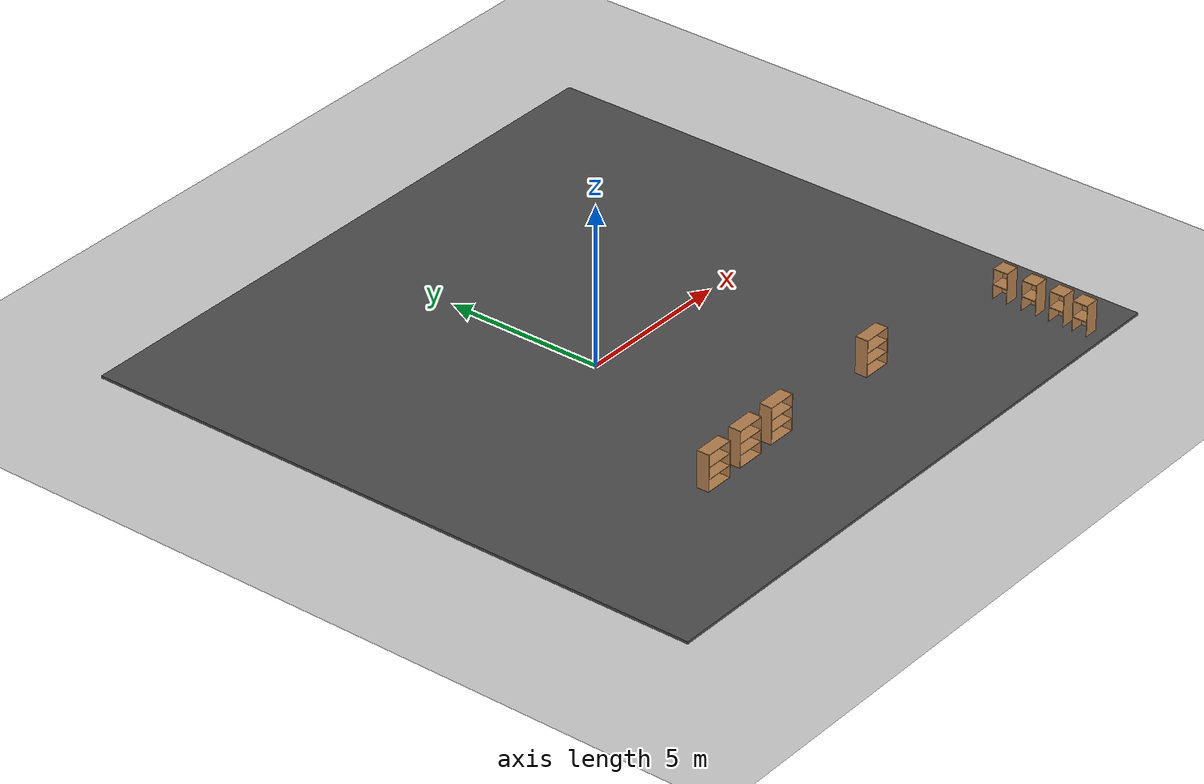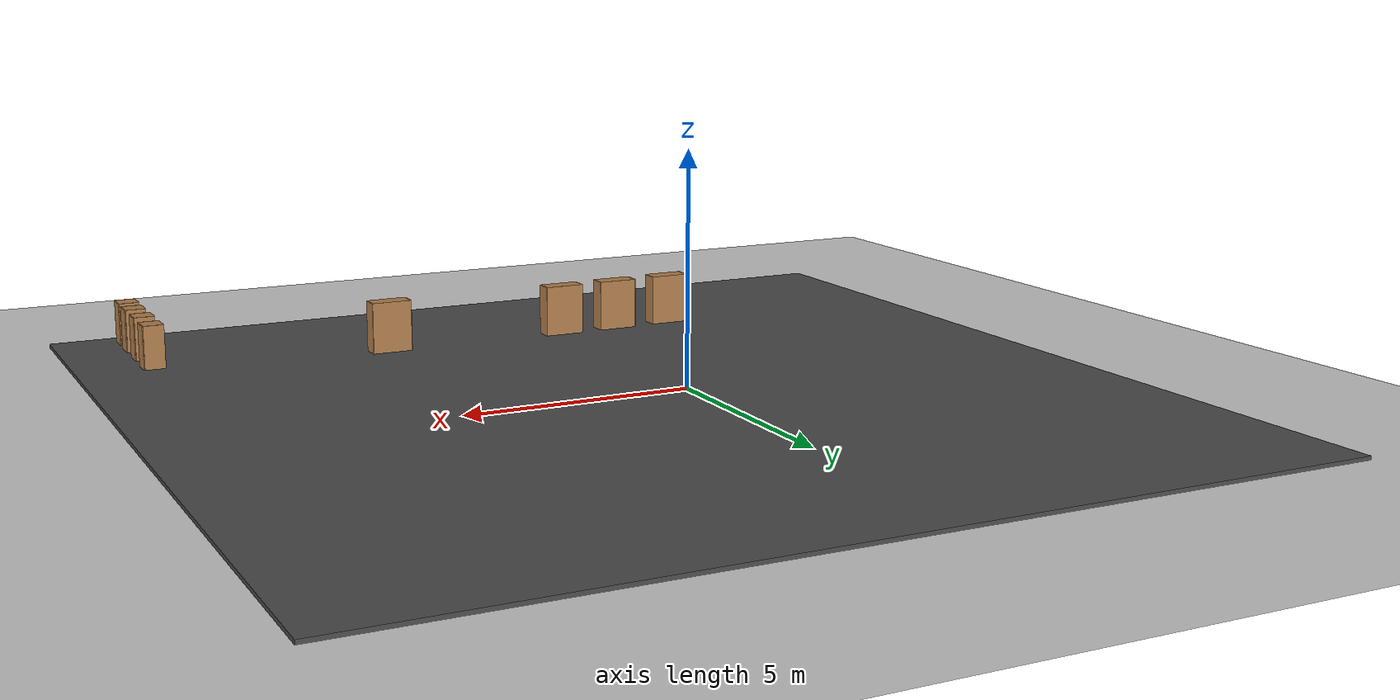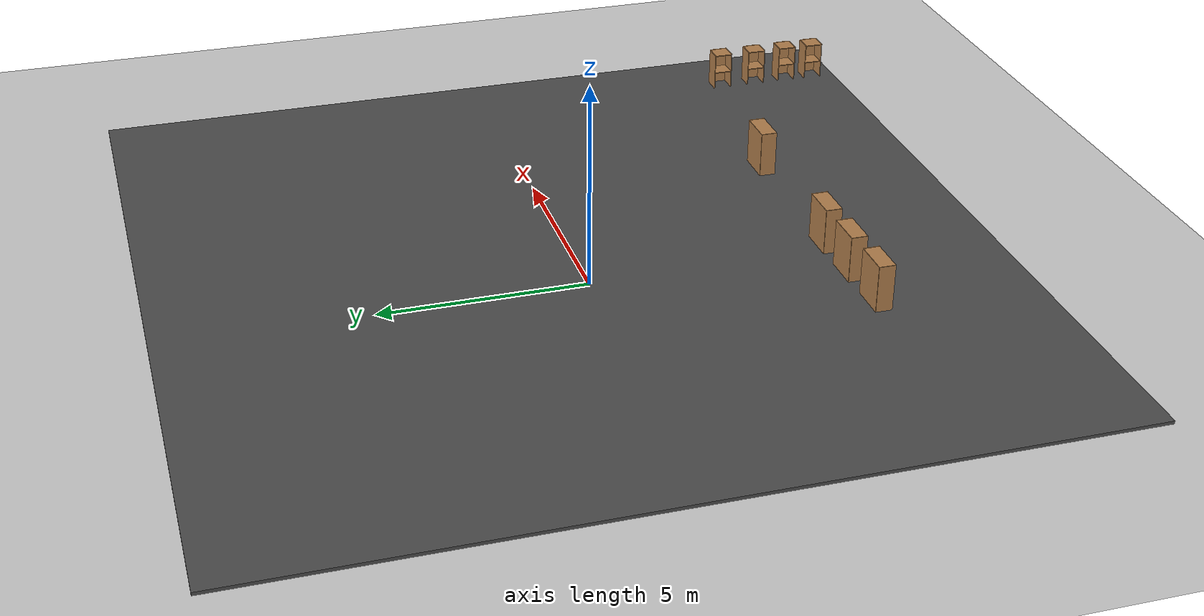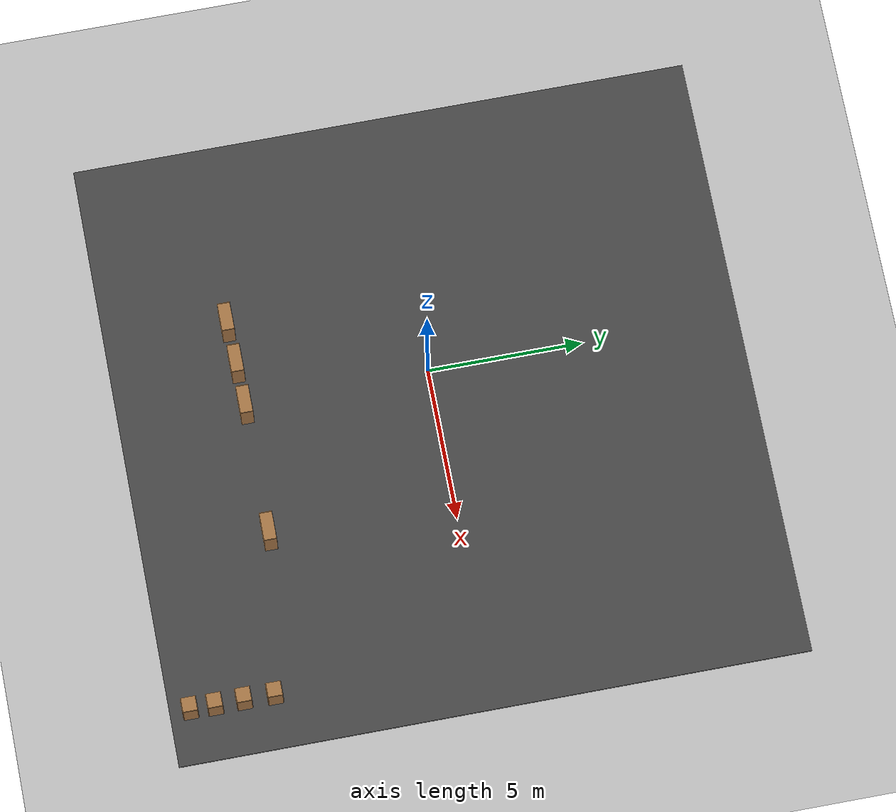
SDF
<sdf version="1.7">
 <world name="default">
  <model name="ground_plane">
   <static>1</static>
   <link name="link">
    <collision name="collision">
     <geometry><plane><normal>0 0 1</normal><size>100 100</size></plane></geometry>
     <surface><friction><ode><mu>100</mu><mu2>50</mu2></ode></friction></surface>
    </collision>
    <visual name="visual">
     <cast_shadows>0</cast_shadows>
     <geometry><plane><normal>0 0 1</normal><size>100 100</size></plane></geometry>
     <material>
      <script><uri>file://media/materials/scripts/gazebo.material</uri><name>Gazebo/Grey</name></script>
     </material>
    </visual>
   </link>
  </model>
  <model name="asphalt_plane">
   <link name="link">
    <visual name="visual">
     <cast_shadows>0</cast_shadows>
     <geometry><box><size>20 20 0.1</size></box></geometry>
     <material>
      <script>
       <uri>model://asphalt_plane/materials/scripts</uri>
       <uri>model://asphalt_plane/materials/textures</uri>
       <name>vrc/asphalt</name>
      </script>
      <shader type="pixel"/>
     </material>
    </visual>
    <collision name="collision">
     <geometry><box><size>20 20 0.1</size></box></geometry>
     <surface>
      <friction>
       <ode><mu>1</mu><mu2>1</mu2><fdir1>0 0 0</fdir1><slip1>0</slip1><slip2>0</slip2></ode>
       <torsional>
        <coefficient>1</coefficient>
        <patch_radius>0</patch_radius>
        <surface_radius>0</surface_radius>
        <use_patch_radius>1</use_patch_radius>
        <ode><slip>0</slip></ode>
       </torsional>
      </friction>
      <bounce><restitution_coefficient>0</restitution_coefficient><threshold>1e+06</threshold></bounce>
      <contact>
       <collide_without_contact>0</collide_without_contact>
       <collide_without_contact_bitmask>1</collide_without_contact_bitmask>
       <collide_bitmask>1</collide_bitmask>
       <ode>
        <soft_cfm>0</soft_cfm>
        <soft_erp>0.2</soft_erp>
        <kp>1e+13</kp>
        <kd>1</kd>
        <max_vel>0.01</max_vel>
        <min_depth>0</min_depth>
       </ode>
       <bullet>
        <split_impulse>1</split_impulse>
        <split_impulse_penetration_threshold>-0.01</split_impulse_penetration_threshold>
        <soft_cfm>0</soft_cfm>
        <soft_erp>0.2</soft_erp>
        <kp>1e+13</kp>
        <kd>1</kd>
       </bullet>
      </contact>
     </surface>
    </collision>
   </link>
   <static>1</static>
   <pose>1.27844 0.044412 0 0 -0 0</pose>
  </model>
  <model name="bookshelf">
   <static>1</static>
   <link name="link">
    <inertial><mass>1</mass></inertial>
    <collision name="back">
     <pose>0 0.005 0.6 0 -0 0</pose>
     <geometry><box><size>0.9 0.01 1.2</size></box></geometry>
    </collision>
    <visual name="visual1">
     <pose>0 0.005 0.6 0 -0 0</pose>
     <geometry><box><size>0.9 0.01 1.2</size></box></geometry>
     <material>
      <script><uri>file://media/materials/scripts/gazebo.material</uri><name>Gazebo/Wood</name></script>
     </material>
    </visual>
    <collision name="left_side">
     <pose>0.45 -0.195 0.6 0 -0 0</pose>
     <geometry><box><size>0.02 0.4 1.2</size></box></geometry>
    </collision>
    <visual name="visual2">
     <pose>0.45 -0.195 0.6 0 -0 0</pose>
     <geometry><box><size>0.02 0.4 1.2</size></box></geometry>
     <material>
      <script><uri>file://media/materials/scripts/gazebo.material</uri><name>Gazebo/Wood</name></script>
     </material>
    </visual>
    <collision name="right_side">
     <pose>-0.45 -0.195 0.6 0 -0 0</pose>
     <geometry><box><size>0.02 0.4 1.2</size></box></geometry>
    </collision>
    <visual name="visual3">
     <pose>-0.45 -0.195 0.6 0 -0 0</pose>
     <geometry><box><size>0.02 0.4 1.2</size></box></geometry>
     <material>
      <script><uri>file://media/materials/scripts/gazebo.material</uri><name>Gazebo/Wood</name></script>
     </material>
    </visual>
    <collision name="bottom">
     <pose>0 -0.195 0.03 0 -0 0</pose>
     <geometry><box><size>0.88 0.4 0.06</size></box></geometry>
    </collision>
    <visual name="visual4">
     <pose>0 -0.195 0.03 0 -0 0</pose>
     <geometry><box><size>0.88 0.4 0.06</size></box></geometry>
     <material>
      <script><uri>file://media/materials/scripts/gazebo.material</uri><name>Gazebo/Wood</name></script>
     </material>
    </visual>
    <collision name="top">
     <pose>0 -0.195 1.19 0 -0 0</pose>
     <geometry><box><size>0.88 0.4 0.02</size></box></geometry>
    </collision>
    <visual name="visual5">
     <pose>0 -0.195 1.19 0 -0 0</pose>
     <geometry><box><size>0.88 0.4 0.02</size></box></geometry>
     <material>
      <script><uri>file://media/materials/scripts/gazebo.material</uri><name>Gazebo/Wood</name></script>
     </material>
    </visual>
    <collision name="low_shelf">
     <pose>0 -0.195 0.43 0 -0 0</pose>
     <geometry><box><size>0.88 0.4 0.02</size></box></geometry>
    </collision>
    <visual name="visual6">
     <pose>0 -0.195 0.43 0 -0 0</pose>
     <geometry><box><size>0.88 0.4 0.02</size></box></geometry>
     <material>
      <script><uri>file://media/materials/scripts/gazebo.material</uri><name>Gazebo/Wood</name></script>
     </material>
    </visual>
    <collision name="high_shelf">
     <pose>0 -0.195 0.8 0 -0 0</pose>
     <geometry><box><size>0.88 0.4 0.02</size></box></geometry>
    </collision>
    <visual name="visual7">
     <pose>0 -0.195 0.8 0 -0 0</pose>
     <geometry><box><size>0.88 0.4 0.02</size></box></geometry>
     <material>
      <script><uri>file://media/materials/scripts/gazebo.material</uri><name>Gazebo/Wood</name></script>
     </material>
    </visual>
   </link>
   <pose>-2.58547 -5.80992 0 0 -0 0</pose>
  </model>
  <model name="bookshelf_0">
   <static>1</static>
   <link name="link">
    <inertial><mass>1</mass></inertial>
    <collision name="back">
     <pose>0 0.005 0.6 0 -0 0</pose>
     <geometry><box><size>0.9 0.01 1.2</size></box></geometry>
    </collision>
    <visual name="visual1">
     <pose>0 0.005 0.6 0 -0 0</pose>
     <geometry><box><size>0.9 0.01 1.2</size></box></geometry>
     <material>
      <script><uri>file://media/materials/scripts/gazebo.material</uri><name>Gazebo/Wood</name></script>
     </material>
    </visual>
    <collision name="left_side">
     <pose>0.45 -0.195 0.6 0 -0 0</pose>
     <geometry><box><size>0.02 0.4 1.2</size></box></geometry>
    </collision>
    <visual name="visual2">
     <pose>0.45 -0.195 0.6 0 -0 0</pose>
     <geometry><box><size>0.02 0.4 1.2</size></box></geometry>
     <material>
      <script><uri>file://media/materials/scripts/gazebo.material</uri><name>Gazebo/Wood</name></script>
     </material>
    </visual>
    <collision name="right_side">
     <pose>-0.45 -0.195 0.6 0 -0 0</pose>
     <geometry><box><size>0.02 0.4 1.2</size></box></geometry>
    </collision>
    <visual name="visual3">
     <pose>-0.45 -0.195 0.6 0 -0 0</pose>
     <geometry><box><size>0.02 0.4 1.2</size></box></geometry>
     <material>
      <script><uri>file://media/materials/scripts/gazebo.material</uri><name>Gazebo/Wood</name></script>
     </material>
    </visual>
    <collision name="bottom">
     <pose>0 -0.195 0.03 0 -0 0</pose>
     <geometry><box><size>0.88 0.4 0.06</size></box></geometry>
    </collision>
    <visual name="visual4">
     <pose>0 -0.195 0.03 0 -0 0</pose>
     <geometry><box><size>0.88 0.4 0.06</size></box></geometry>
     <material>
      <script><uri>file://media/materials/scripts/gazebo.material</uri><name>Gazebo/Wood</name></script>
     </material>
    </visual>
    <collision name="top">
     <pose>0 -0.195 1.19 0 -0 0</pose>
     <geometry><box><size>0.88 0.4 0.02</size></box></geometry>
    </collision>
    <visual name="visual5">
     <pose>0 -0.195 1.19 0 -0 0</pose>
     <geometry><box><size>0.88 0.4 0.02</size></box></geometry>
     <material>
      <script><uri>file://media/materials/scripts/gazebo.material</uri><name>Gazebo/Wood</name></script>
     </material>
    </visual>
    <collision name="low_shelf">
     <pose>0 -0.195 0.43 0 -0 0</pose>
     <geometry><box><size>0.88 0.4 0.02</size></box></geometry>
    </collision>
    <visual name="visual6">
     <pose>0 -0.195 0.43 0 -0 0</pose>
     <geometry><box><size>0.88 0.4 0.02</size></box></geometry>
     <material>
      <script><uri>file://media/materials/scripts/gazebo.material</uri><name>Gazebo/Wood</name></script>
     </material>
    </visual>
    <collision name="high_shelf">
     <pose>0 -0.195 0.8 0 -0 0</pose>
     <geometry><box><size>0.88 0.4 0.02</size></box></geometry>
    </collision>
    <visual name="visual7">
     <pose>0 -0.195 0.8 0 -0 0</pose>
     <geometry><box><size>0.88 0.4 0.02</size></box></geometry>
     <material>
      <script><uri>file://media/materials/scripts/gazebo.material</uri><name>Gazebo/Wood</name></script>
     </material>
    </visual>
   </link>
   <pose>-1.17255 -5.75218 0 0 -0 0</pose>
  </model>
  <model name="bookshelf_1">
   <static>1</static>
   <link name="link">
    <inertial><mass>1</mass></inertial>
    <collision name="back">
     <pose>0 0.005 0.6 0 -0 0</pose>
     <geometry><box><size>0.9 0.01 1.2</size></box></geometry>
    </collision>
    <visual name="visual1">
     <pose>0 0.005 0.6 0 -0 0</pose>
     <geometry><box><size>0.9 0.01 1.2</size></box></geometry>
     <material>
      <script><uri>file://media/materials/scripts/gazebo.material</uri><name>Gazebo/Wood</name></script>
     </material>
    </visual>
    <collision name="left_side">
     <pose>0.45 -0.195 0.6 0 -0 0</pose>
     <geometry><box><size>0.02 0.4 1.2</size></box></geometry>
    </collision>
    <visual name="visual2">
     <pose>0.45 -0.195 0.6 0 -0 0</pose>
     <geometry><box><size>0.02 0.4 1.2</size></box></geometry>
     <material>
      <script><uri>file://media/materials/scripts/gazebo.material</uri><name>Gazebo/Wood</name></script>
     </material>
    </visual>
    <collision name="right_side">
     <pose>-0.45 -0.195 0.6 0 -0 0</pose>
     <geometry><box><size>0.02 0.4 1.2</size></box></geometry>
    </collision>
    <visual name="visual3">
     <pose>-0.45 -0.195 0.6 0 -0 0</pose>
     <geometry><box><size>0.02 0.4 1.2</size></box></geometry>
     <material>
      <script><uri>file://media/materials/scripts/gazebo.material</uri><name>Gazebo/Wood</name></script>
     </material>
    </visual>
    <collision name="bottom">
     <pose>0 -0.195 0.03 0 -0 0</pose>
     <geometry><box><size>0.88 0.4 0.06</size></box></geometry>
    </collision>
    <visual name="visual4">
     <pose>0 -0.195 0.03 0 -0 0</pose>
     <geometry><box><size>0.88 0.4 0.06</size></box></geometry>
     <material>
      <script><uri>file://media/materials/scripts/gazebo.material</uri><name>Gazebo/Wood</name></script>
     </material>
    </visual>
    <collision name="top">
     <pose>0 -0.195 1.19 0 -0 0</pose>
     <geometry><box><size>0.88 0.4 0.02</size></box></geometry>
    </collision>
    <visual name="visual5">
     <pose>0 -0.195 1.19 0 -0 0</pose>
     <geometry><box><size>0.88 0.4 0.02</size></box></geometry>
     <material>
      <script><uri>file://media/materials/scripts/gazebo.material</uri><name>Gazebo/Wood</name></script>
     </material>
    </visual>
    <collision name="low_shelf">
     <pose>0 -0.195 0.43 0 -0 0</pose>
     <geometry><box><size>0.88 0.4 0.02</size></box></geometry>
    </collision>
    <visual name="visual6">
     <pose>0 -0.195 0.43 0 -0 0</pose>
     <geometry><box><size>0.88 0.4 0.02</size></box></geometry>
     <material>
      <script><uri>file://media/materials/scripts/gazebo.material</uri><name>Gazebo/Wood</name></script>
     </material>
    </visual>
    <collision name="high_shelf">
     <pose>0 -0.195 0.8 0 -0 0</pose>
     <geometry><box><size>0.88 0.4 0.02</size></box></geometry>
    </collision>
    <visual name="visual7">
     <pose>0 -0.195 0.8 0 -0 0</pose>
     <geometry><box><size>0.88 0.4 0.02</size></box></geometry>
     <material>
      <script><uri>file://media/materials/scripts/gazebo.material</uri><name>Gazebo/Wood</name></script>
     </material>
    </visual>
   </link>
   <pose>0.226224 -5.7131 0 0 -0 0</pose>
  </model>
  <model name="bookshelf_4">
   <static>1</static>
   <link name="link">
    <inertial><mass>1</mass></inertial>
    <collision name="back">
     <pose>0 0.005 0.6 0 -0 0</pose>
     <geometry><box><size>0.9 0.01 1.2</size></box></geometry>
    </collision>
    <visual name="visual1">
     <pose>0 0.005 0.6 0 -0 0</pose>
     <geometry><box><size>0.9 0.01 1.2</size></box></geometry>
     <material>
      <script><uri>file://media/materials/scripts/gazebo.material</uri><name>Gazebo/Wood</name></script>
     </material>
    </visual>
    <collision name="left_side">
     <pose>0.45 -0.195 0.6 0 -0 0</pose>
     <geometry><box><size>0.02 0.4 1.2</size></box></geometry>
    </collision>
    <visual name="visual2">
     <pose>0.45 -0.195 0.6 0 -0 0</pose>
     <geometry><box><size>0.02 0.4 1.2</size></box></geometry>
     <material>
      <script><uri>file://media/materials/scripts/gazebo.material</uri><name>Gazebo/Wood</name></script>
     </material>
    </visual>
    <collision name="right_side">
     <pose>-0.45 -0.195 0.6 0 -0 0</pose>
     <geometry><box><size>0.02 0.4 1.2</size></box></geometry>
    </collision>
    <visual name="visual3">
     <pose>-0.45 -0.195 0.6 0 -0 0</pose>
     <geometry><box><size>0.02 0.4 1.2</size></box></geometry>
     <material>
      <script><uri>file://media/materials/scripts/gazebo.material</uri><name>Gazebo/Wood</name></script>
     </material>
    </visual>
    <collision name="bottom">
     <pose>0 -0.195 0.03 0 -0 0</pose>
     <geometry><box><size>0.88 0.4 0.06</size></box></geometry>
    </collision>
    <visual name="visual4">
     <pose>0 -0.195 0.03 0 -0 0</pose>
     <geometry><box><size>0.88 0.4 0.06</size></box></geometry>
     <material>
      <script><uri>file://media/materials/scripts/gazebo.material</uri><name>Gazebo/Wood</name></script>
     </material>
    </visual>
    <collision name="top">
     <pose>0 -0.195 1.19 0 -0 0</pose>
     <geometry><box><size>0.88 0.4 0.02</size></box></geometry>
    </collision>
    <visual name="visual5">
     <pose>0 -0.195 1.19 0 -0 0</pose>
     <geometry><box><size>0.88 0.4 0.02</size></box></geometry>
     <material>
      <script><uri>file://media/materials/scripts/gazebo.material</uri><name>Gazebo/Wood</name></script>
     </material>
    </visual>
    <collision name="low_shelf">
     <pose>0 -0.195 0.43 0 -0 0</pose>
     <geometry><box><size>0.88 0.4 0.02</size></box></geometry>
    </collision>
    <visual name="visual6">
     <pose>0 -0.195 0.43 0 -0 0</pose>
     <geometry><box><size>0.88 0.4 0.02</size></box></geometry>
     <material>
      <script><uri>file://media/materials/scripts/gazebo.material</uri><name>Gazebo/Wood</name></script>
     </material>
    </visual>
    <collision name="high_shelf">
     <pose>0 -0.195 0.8 0 -0 0</pose>
     <geometry><box><size>0.88 0.4 0.02</size></box></geometry>
    </collision>
    <visual name="visual7">
     <pose>0 -0.195 0.8 0 -0 0</pose>
     <geometry><box><size>0.88 0.4 0.02</size></box></geometry>
     <material>
      <script><uri>file://media/materials/scripts/gazebo.material</uri><name>Gazebo/Wood</name></script>
     </material>
    </visual>
   </link>
   <pose>4.46549 -5.71605 0 0 -0 0</pose>
  </model>
  <model name="cabinet_0">
   <static>1</static>
   <link name="cabinet_bottom_plate">
    <inertial>
     <pose>0 0 -1 0 -0 0</pose>
     <inertia><ixx>2.05</ixx><ixy>0</ixy><ixz>0</ixz><iyy>2.05</iyy><iyz>0</iyz><izz>2.05</izz></inertia>
     <mass>25</mass>
    </inertial>
    <collision name="cabinet_bottom_plate_geom">
     <pose>0 0 0.01 0 -0 0</pose>
     <geometry><box><size>0.45 0.45 0.02</size></box></geometry>
    </collision>
    <visual name="cabinet_bottom_plate_geom_visual">
     <pose>0 0 0.01 0 -0 0</pose>
     <geometry><box><size>0.45 0.45 0.02</size></box></geometry>
     <material>
      <script><uri>file://media/materials/scripts/gazebo.material</uri><name>Gazebo/Wood</name></script>
     </material>
    </visual>
    <collision name="cabinet_bottom_plate_geom_cabinet_back_plate">
     <pose>0.235 0 0.51 0 -0 0</pose>
     <geometry><box><size>0.02 0.45 1.02</size></box></geometry>
    </collision>
    <visual name="cabinet_bottom_plate_geom_cabinet_back_plate_visual">
     <pose>0.235 0 0.51 0 -0 0</pose>
     <geometry><box><size>0.02 0.45 1.02</size></box></geometry>
     <material>
      <script><uri>file://media/materials/scripts/gazebo.material</uri><name>Gazebo/Wood</name></script>
     </material>
    </visual>
    <collision name="cabinet_bottom_plate_geom_cabinet_left_plate">
     <pose>0 0.235 0.51 0 -0 0</pose>
     <geometry><box><size>0.45 0.02 1.02</size></box></geometry>
    </collision>
    <visual name="cabinet_bottom_plate_geom_cabinet_left_plate_visual">
     <pose>0 0.235 0.51 0 -0 0</pose>
     <geometry><box><size>0.45 0.02 1.02</size></box></geometry>
     <material>
      <script><uri>file://media/materials/scripts/gazebo.material</uri><name>Gazebo/Wood</name></script>
     </material>
    </visual>
    <collision name="cabinet_bottom_plate_geom_cabinet_middle_plate">
     <pose>0 0 0.51 0 -0 0</pose>
     <geometry><box><size>0.45 0.45 0.02</size></box></geometry>
    </collision>
    <visual name="cabinet_bottom_plate_geom_cabinet_middle_plate_visual">
     <pose>0 0 0.51 0 -0 0</pose>
     <geometry><box><size>0.45 0.45 0.02</size></box></geometry>
     <material>
      <script><uri>file://media/materials/scripts/gazebo.material</uri><name>Gazebo/Wood</name></script>
     </material>
    </visual>
    <collision name="cabinet_bottom_plate_geom_cabinet_right_plate">
     <pose>0 -0.235 0.51 0 -0 0</pose>
     <geometry><box><size>0.45 0.02 1.02</size></box></geometry>
    </collision>
    <visual name="cabinet_bottom_plate_geom_cabinet_right_plate_visual">
     <pose>0 -0.235 0.51 0 -0 0</pose>
     <geometry><box><size>0.45 0.02 1.02</size></box></geometry>
     <material>
      <script><uri>file://media/materials/scripts/gazebo.material</uri><name>Gazebo/Wood</name></script>
     </material>
    </visual>
    <collision name="cabinet_bottom_plate_geom_cabinet_top_plate">
     <pose>0 0 1.01 0 -0 0</pose>
     <geometry><box><size>0.45 0.45 0.02</size></box></geometry>
    </collision>
    <visual name="cabinet_bottom_plate_geom_cabinet_top_plate_visual">
     <pose>0 0 1.01 0 -0 0</pose>
     <geometry><box><size>0.45 0.45 0.02</size></box></geometry>
     <material>
      <script><uri>file://media/materials/scripts/gazebo.material</uri><name>Gazebo/Wood</name></script>
     </material>
    </visual>
   </link>
   <pose>9.61402 -8.5228 0 0 -0 0</pose>
  </model>
  <model name="cabinet_1">
   <static>1</static>
   <link name="cabinet_bottom_plate">
    <inertial>
     <pose>0 0 -1 0 -0 0</pose>
     <inertia><ixx>2.05</ixx><ixy>0</ixy><ixz>0</ixz><iyy>2.05</iyy><iyz>0</iyz><izz>2.05</izz></inertia>
     <mass>25</mass>
    </inertial>
    <collision name="cabinet_bottom_plate_geom">
     <pose>0 0 0.01 0 -0 0</pose>
     <geometry><box><size>0.45 0.45 0.02</size></box></geometry>
    </collision>
    <visual name="cabinet_bottom_plate_geom_visual">
     <pose>0 0 0.01 0 -0 0</pose>
     <geometry><box><size>0.45 0.45 0.02</size></box></geometry>
     <material>
      <script><uri>file://media/materials/scripts/gazebo.material</uri><name>Gazebo/Wood</name></script>
     </material>
    </visual>
    <collision name="cabinet_bottom_plate_geom_cabinet_back_plate">
     <pose>0.235 0 0.51 0 -0 0</pose>
     <geometry><box><size>0.02 0.45 1.02</size></box></geometry>
    </collision>
    <visual name="cabinet_bottom_plate_geom_cabinet_back_plate_visual">
     <pose>0.235 0 0.51 0 -0 0</pose>
     <geometry><box><size>0.02 0.45 1.02</size></box></geometry>
     <material>
      <script><uri>file://media/materials/scripts/gazebo.material</uri><name>Gazebo/Wood</name></script>
     </material>
    </visual>
    <collision name="cabinet_bottom_plate_geom_cabinet_left_plate">
     <pose>0 0.235 0.51 0 -0 0</pose>
     <geometry><box><size>0.45 0.02 1.02</size></box></geometry>
    </collision>
    <visual name="cabinet_bottom_plate_geom_cabinet_left_plate_visual">
     <pose>0 0.235 0.51 0 -0 0</pose>
     <geometry><box><size>0.45 0.02 1.02</size></box></geometry>
     <material>
      <script><uri>file://media/materials/scripts/gazebo.material</uri><name>Gazebo/Wood</name></script>
     </material>
    </visual>
    <collision name="cabinet_bottom_plate_geom_cabinet_middle_plate">
     <pose>0 0 0.51 0 -0 0</pose>
     <geometry><box><size>0.45 0.45 0.02</size></box></geometry>
    </collision>
    <visual name="cabinet_bottom_plate_geom_cabinet_middle_plate_visual">
     <pose>0 0 0.51 0 -0 0</pose>
     <geometry><box><size>0.45 0.45 0.02</size></box></geometry>
     <material>
      <script><uri>file://media/materials/scripts/gazebo.material</uri><name>Gazebo/Wood</name></script>
     </material>
    </visual>
    <collision name="cabinet_bottom_plate_geom_cabinet_right_plate">
     <pose>0 -0.235 0.51 0 -0 0</pose>
     <geometry><box><size>0.45 0.02 1.02</size></box></geometry>
    </collision>
    <visual name="cabinet_bottom_plate_geom_cabinet_right_plate_visual">
     <pose>0 -0.235 0.51 0 -0 0</pose>
     <geometry><box><size>0.45 0.02 1.02</size></box></geometry>
     <material>
      <script><uri>file://media/materials/scripts/gazebo.material</uri><name>Gazebo/Wood</name></script>
     </material>
    </visual>
    <collision name="cabinet_bottom_plate_geom_cabinet_top_plate">
     <pose>0 0 1.01 0 -0 0</pose>
     <geometry><box><size>0.45 0.45 0.02</size></box></geometry>
    </collision>
    <visual name="cabinet_bottom_plate_geom_cabinet_top_plate_visual">
     <pose>0 0 1.01 0 -0 0</pose>
     <geometry><box><size>0.45 0.45 0.02</size></box></geometry>
     <material>
      <script><uri>file://media/materials/scripts/gazebo.material</uri><name>Gazebo/Wood</name></script>
     </material>
    </visual>
   </link>
   <pose>9.60733 -7.61254 0 0 -0 0</pose>
  </model>
  <model name="cabinet_2">
   <static>1</static>
   <link name="cabinet_bottom_plate">
    <inertial>
     <pose>0 0 -1 0 -0 0</pose>
     <inertia><ixx>2.05</ixx><ixy>0</ixy><ixz>0</ixz><iyy>2.05</iyy><iyz>0</iyz><izz>2.05</izz></inertia>
     <mass>25</mass>
    </inertial>
    <collision name="cabinet_bottom_plate_geom">
     <pose>0 0 0.01 0 -0 0</pose>
     <geometry><box><size>0.45 0.45 0.02</size></box></geometry>
    </collision>
    <visual name="cabinet_bottom_plate_geom_visual">
     <pose>0 0 0.01 0 -0 0</pose>
     <geometry><box><size>0.45 0.45 0.02</size></box></geometry>
     <material>
      <script><uri>file://media/materials/scripts/gazebo.material</uri><name>Gazebo/Wood</name></script>
     </material>
    </visual>
    <collision name="cabinet_bottom_plate_geom_cabinet_back_plate">
     <pose>0.235 0 0.51 0 -0 0</pose>
     <geometry><box><size>0.02 0.45 1.02</size></box></geometry>
    </collision>
    <visual name="cabinet_bottom_plate_geom_cabinet_back_plate_visual">
     <pose>0.235 0 0.51 0 -0 0</pose>
     <geometry><box><size>0.02 0.45 1.02</size></box></geometry>
     <material>
      <script><uri>file://media/materials/scripts/gazebo.material</uri><name>Gazebo/Wood</name></script>
     </material>
    </visual>
    <collision name="cabinet_bottom_plate_geom_cabinet_left_plate">
     <pose>0 0.235 0.51 0 -0 0</pose>
     <geometry><box><size>0.45 0.02 1.02</size></box></geometry>
    </collision>
    <visual name="cabinet_bottom_plate_geom_cabinet_left_plate_visual">
     <pose>0 0.235 0.51 0 -0 0</pose>
     <geometry><box><size>0.45 0.02 1.02</size></box></geometry>
     <material>
      <script><uri>file://media/materials/scripts/gazebo.material</uri><name>Gazebo/Wood</name></script>
     </material>
    </visual>
    <collision name="cabinet_bottom_plate_geom_cabinet_middle_plate">
     <pose>0 0 0.51 0 -0 0</pose>
     <geometry><box><size>0.45 0.45 0.02</size></box></geometry>
    </collision>
    <visual name="cabinet_bottom_plate_geom_cabinet_middle_plate_visual">
     <pose>0 0 0.51 0 -0 0</pose>
     <geometry><box><size>0.45 0.45 0.02</size></box></geometry>
     <material>
      <script><uri>file://media/materials/scripts/gazebo.material</uri><name>Gazebo/Wood</name></script>
     </material>
    </visual>
    <collision name="cabinet_bottom_plate_geom_cabinet_right_plate">
     <pose>0 -0.235 0.51 0 -0 0</pose>
     <geometry><box><size>0.45 0.02 1.02</size></box></geometry>
    </collision>
    <visual name="cabinet_bottom_plate_geom_cabinet_right_plate_visual">
     <pose>0 -0.235 0.51 0 -0 0</pose>
     <geometry><box><size>0.45 0.02 1.02</size></box></geometry>
     <material>
      <script><uri>file://media/materials/scripts/gazebo.material</uri><name>Gazebo/Wood</name></script>
     </material>
    </visual>
    <collision name="cabinet_bottom_plate_geom_cabinet_top_plate">
     <pose>0 0 1.01 0 -0 0</pose>
     <geometry><box><size>0.45 0.45 0.02</size></box></geometry>
    </collision>
    <visual name="cabinet_bottom_plate_geom_cabinet_top_plate_visual">
     <pose>0 0 1.01 0 -0 0</pose>
     <geometry><box><size>0.45 0.45 0.02</size></box></geometry>
     <material>
      <script><uri>file://media/materials/scripts/gazebo.material</uri><name>Gazebo/Wood</name></script>
     </material>
    </visual>
   </link>
   <pose>9.61942 -6.64294 0 0 -0 0</pose>
  </model>
  <model name="cabinet">
   <static>1</static>
   <link name="cabinet_bottom_plate">
    <inertial>
     <pose>0 0 -1 0 -0 0</pose>
     <inertia><ixx>2.05</ixx><ixy>0</ixy><ixz>0</ixz><iyy>2.05</iyy><iyz>0</iyz><izz>2.05</izz></inertia>
     <mass>25</mass>
    </inertial>
    <collision name="cabinet_bottom_plate_geom">
     <pose>0 0 0.01 0 -0 0</pose>
     <geometry><box><size>0.45 0.45 0.02</size></box></geometry>
    </collision>
    <visual name="cabinet_bottom_plate_geom_visual">
     <pose>0 0 0.01 0 -0 0</pose>
     <geometry><box><size>0.45 0.45 0.02</size></box></geometry>
     <material>
      <script><uri>file://media/materials/scripts/gazebo.material</uri><name>Gazebo/Wood</name></script>
     </material>
    </visual>
    <collision name="cabinet_bottom_plate_geom_cabinet_back_plate">
     <pose>0.235 0 0.51 0 -0 0</pose>
     <geometry><box><size>0.02 0.45 1.02</size></box></geometry>
    </collision>
    <visual name="cabinet_bottom_plate_geom_cabinet_back_plate_visual">
     <pose>0.235 0 0.51 0 -0 0</pose>
     <geometry><box><size>0.02 0.45 1.02</size></box></geometry>
     <material>
      <script><uri>file://media/materials/scripts/gazebo.material</uri><name>Gazebo/Wood</name></script>
     </material>
    </visual>
    <collision name="cabinet_bottom_plate_geom_cabinet_left_plate">
     <pose>0 0.235 0.51 0 -0 0</pose>
     <geometry><box><size>0.45 0.02 1.02</size></box></geometry>
    </collision>
    <visual name="cabinet_bottom_plate_geom_cabinet_left_plate_visual">
     <pose>0 0.235 0.51 0 -0 0</pose>
     <geometry><box><size>0.45 0.02 1.02</size></box></geometry>
     <material>
      <script><uri>file://media/materials/scripts/gazebo.material</uri><name>Gazebo/Wood</name></script>
     </material>
    </visual>
    <collision name="cabinet_bottom_plate_geom_cabinet_middle_plate">
     <pose>0 0 0.51 0 -0 0</pose>
     <geometry><box><size>0.45 0.45 0.02</size></box></geometry>
    </collision>
    <visual name="cabinet_bottom_plate_geom_cabinet_middle_plate_visual">
     <pose>0 0 0.51 0 -0 0</pose>
     <geometry><box><size>0.45 0.45 0.02</size></box></geometry>
     <material>
      <script><uri>file://media/materials/scripts/gazebo.material</uri><name>Gazebo/Wood</name></script>
     </material>
    </visual>
    <collision name="cabinet_bottom_plate_geom_cabinet_right_plate">
     <pose>0 -0.235 0.51 0 -0 0</pose>
     <geometry><box><size>0.45 0.02 1.02</size></box></geometry>
    </collision>
    <visual name="cabinet_bottom_plate_geom_cabinet_right_plate_visual">
     <pose>0 -0.235 0.51 0 -0 0</pose>
     <geometry><box><size>0.45 0.02 1.02</size></box></geometry>
     <material>
      <script><uri>file://media/materials/scripts/gazebo.material</uri><name>Gazebo/Wood</name></script>
     </material>
    </visual>
    <collision name="cabinet_bottom_plate_geom_cabinet_top_plate">
     <pose>0 0 1.01 0 -0 0</pose>
     <geometry><box><size>0.45 0.45 0.02</size></box></geometry>
    </collision>
    <visual name="cabinet_bottom_plate_geom_cabinet_top_plate_visual">
     <pose>0 0 1.01 0 -0 0</pose>
     <geometry><box><size>0.45 0.45 0.02</size></box></geometry>
     <material>
      <script><uri>file://media/materials/scripts/gazebo.material</uri><name>Gazebo/Wood</name></script>
     </material>
    </visual>
   </link>
   <pose>9.59848 -9.30695 0 0 -0 0</pose>
  </model>
 </world>
</sdf>
